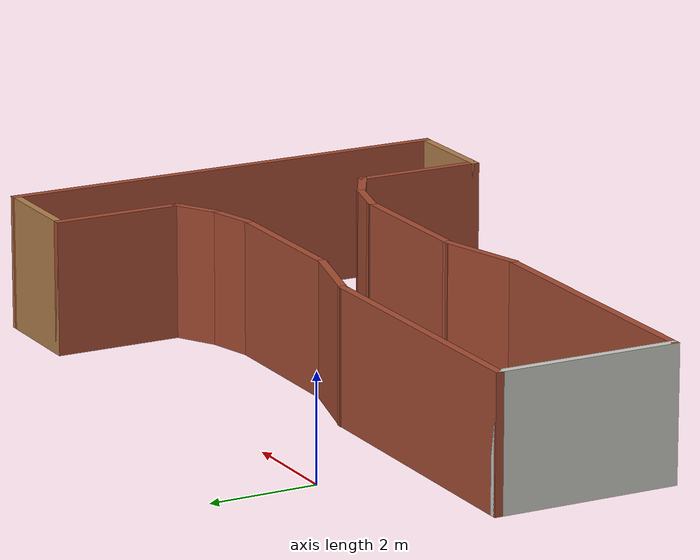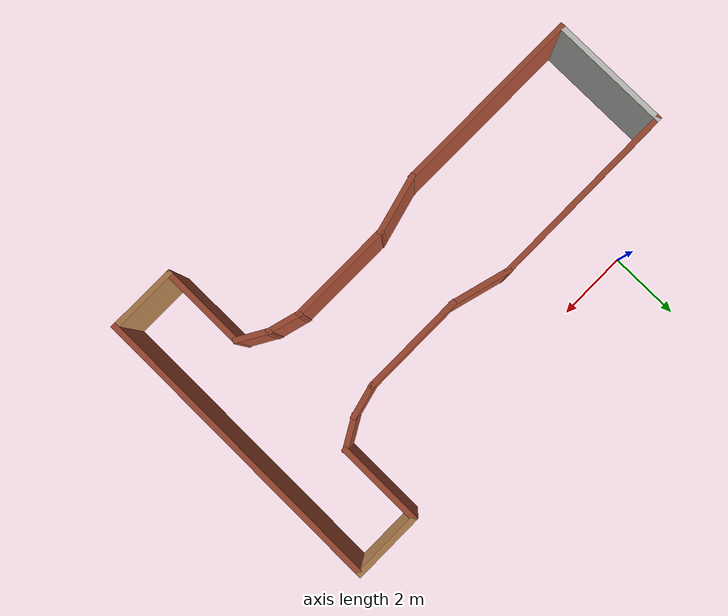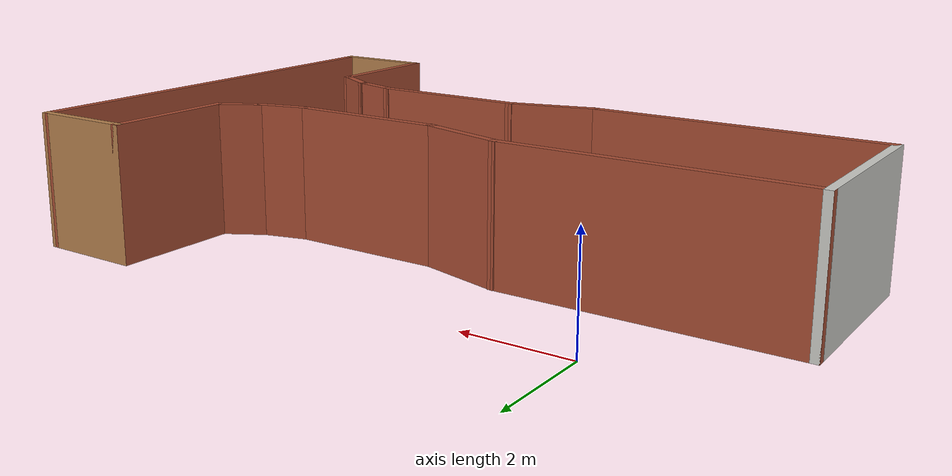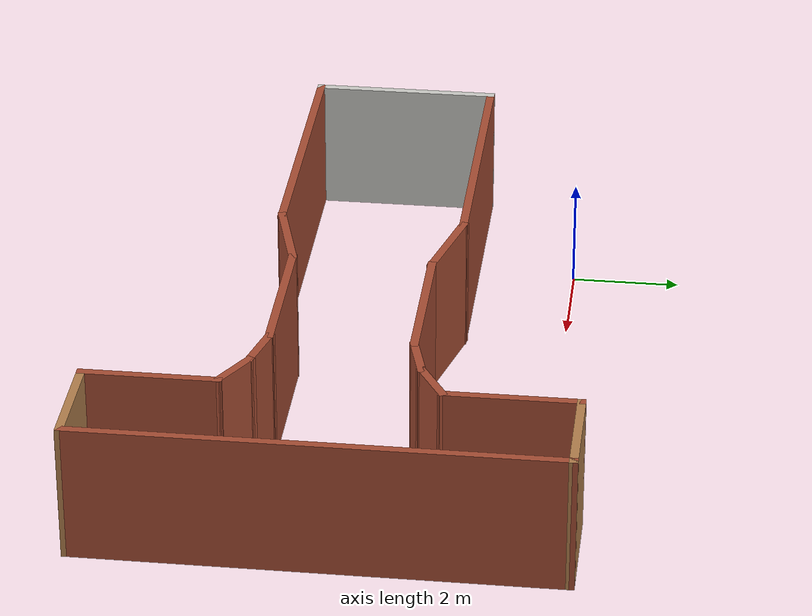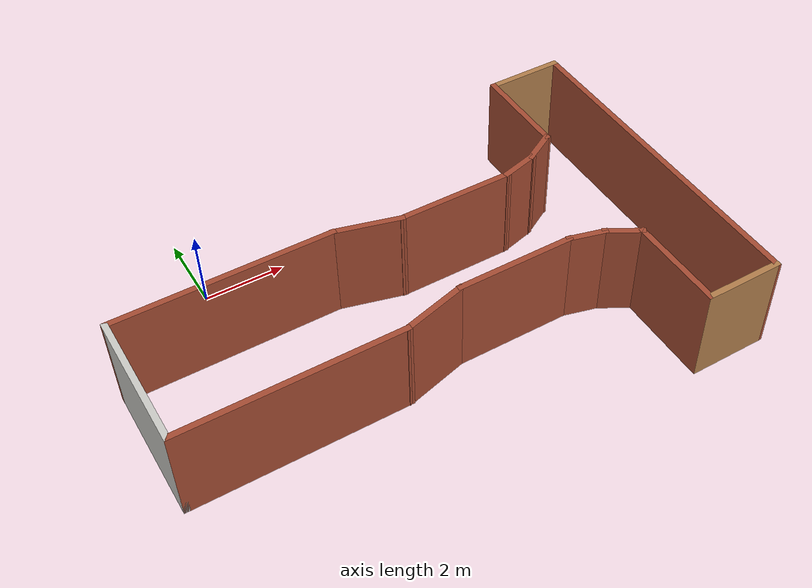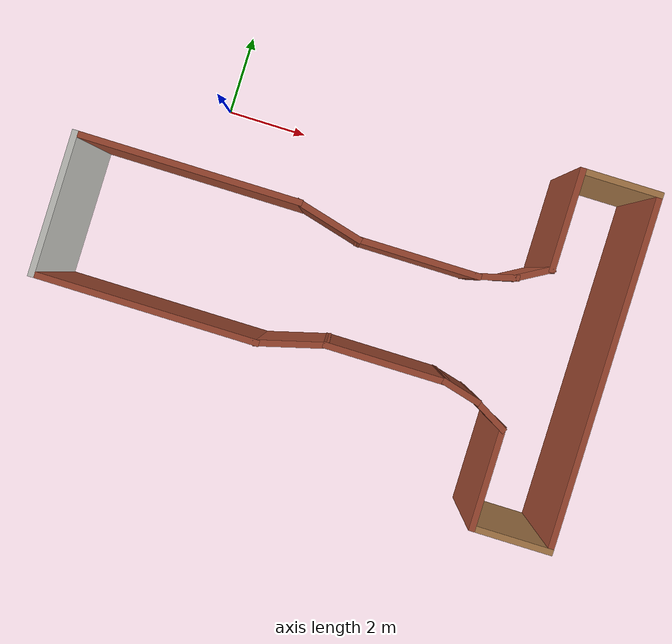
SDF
<?xml version='1.0'?>
<sdf version='1.5'>
  <model name='maze_3'>
    <pose frame=''>3.84212 -3.565 0 0 -0 0</pose>
    <link name='Wall_0'>
      <collision name='Wall_0_Collision'>
        <geometry>
          <box>
            <size>3.5 0.15 2.5</size>
          </box>
        </geometry>
        <pose frame=''>0 0 1.25 0 -0 0</pose>
      </collision>
      <visual name='Wall_0_Visual'>
        <pose frame=''>0 0 1.25 0 -0 0</pose>
        <geometry>
          <box>
            <size>3.5 0.15 2.5</size>
          </box>
        </geometry>
        <material>
          <script>
            <uri>file://media/materials/scripts/gazebo.material</uri>
            <name>Gazebo/CeilingTiled</name>
          </script>
          <ambient>1 1 1 1</ambient>
        </material>
      </visual>
      <pose frame=''>-6.58212 0 0 0 0 -1.5708</pose>
    </link>
    <link name='Wall_1'>
      <collision name='Wall_1_Collision'>
        <geometry>
          <box>
            <size>5.5 0.15 2.5</size>
          </box>
        </geometry>
        <pose frame=''>0 0 1.25 0 -0 0</pose>
      </collision>
      <visual name='Wall_1_Visual'>
        <pose frame=''>0 0 1.25 0 -0 0</pose>
        <geometry>
          <box>
            <size>5.5 0.15 2.5</size>
          </box>
        </geometry>
        <material>
          <script>
            <uri>file://media/materials/scripts/gazebo.material</uri>
            <name>Gazebo/Bricks</name>
          </script>
          <ambient>1 1 1 1</ambient>
        </material>
      </visual>
      <pose frame=''>-3.90712 -1.675 0 0 -0 0</pose>
    </link>
    <link name='Wall_11'>
      <collision name='Wall_11_Collision'>
        <geometry>
          <box>
            <size>1 0.15 2.5</size>
          </box>
        </geometry>
        <pose frame=''>0 0 1.25 0 -0 0</pose>
      </collision>
      <visual name='Wall_11_Visual'>
        <pose frame=''>0 0 1.25 0 -0 0</pose>
        <geometry>
          <box>
            <size>1 0.15 2.5</size>
          </box>
        </geometry>
        <material>
          <script>
            <uri>file://media/materials/scripts/gazebo.material</uri>
            <name>Gazebo/Bricks</name>
          </script>
          <ambient>1 1 1 1</ambient>
        </material>
      </visual>
      <pose frame=''>3.57388 -1.37089 0 0 0 -0.261799</pose>
    </link>
    <link name='Wall_12'>
      <collision name='Wall_12_Collision'>
        <geometry>
          <box>
            <size>1 0.15 2.5</size>
          </box>
        </geometry>
        <pose frame=''>0 0 1.25 0 -0 0</pose>
      </collision>
      <visual name='Wall_12_Visual'>
        <pose frame=''>0 0 1.25 0 -0 0</pose>
        <geometry>
          <box>
            <size>1 0.15 2.5</size>
          </box>
        </geometry>
        <material>
          <script>
            <uri>file://media/materials/scripts/gazebo.material</uri>
            <name>Gazebo/Bricks</name>
          </script>
          <ambient>1 1 1 1</ambient>
        </material>
      </visual>
      <pose frame=''>4.35246 -1.69339 0 0 0 -0.523599</pose>
    </link>
    <link name='Wall_13'>
      <collision name='Wall_13_Collision'>
        <geometry>
          <box>
            <size>2.5 0.15 2.5</size>
          </box>
        </geometry>
        <pose frame=''>0 0 1.25 0 -0 0</pose>
      </collision>
      <visual name='Wall_13_Visual'>
        <pose frame=''>0 0 1.25 0 -0 0</pose>
        <geometry>
          <box>
            <size>2.5 0.15 2.5</size>
          </box>
        </geometry>
        <material>
          <script>
            <uri>file://media/materials/scripts/gazebo.material</uri>
            <name>Gazebo/Bricks</name>
          </script>
          <ambient>1 1 1 1</ambient>
        </material>
      </visual>
      <pose frame=''>4.72052 -3.08089 0 0 0 -1.5708</pose>
    </link>
    <link name='Wall_14'>
      <collision name='Wall_14_Collision'>
        <geometry>
          <box>
            <size>2 0.15 2.5</size>
          </box>
        </geometry>
        <pose frame=''>0 0 1.25 0 -0 0</pose>
      </collision>
      <visual name='Wall_14_Visual'>
        <pose frame=''>0 0 1.25 0 -0 0</pose>
        <geometry>
          <box>
            <size>2 0.15 2.5</size>
          </box>
        </geometry>
        <material>
          <script>
            <uri>file://media/materials/scripts/gazebo.material</uri>
            <name>Gazebo/Wood</name>
          </script>
          <ambient>1 1 1 1</ambient>
        </material>
      </visual>
      <pose frame=''>5.64552 -4.25589 0 0 -0 0</pose>
    </link>
    <link name='Wall_17'>
      <collision name='Wall_17_Collision'>
        <geometry>
          <box>
            <size>1.02224 0.15 2.5</size>
          </box>
        </geometry>
        <pose frame=''>0 0 1.25 0 -0 0</pose>
      </collision>
      <visual name='Wall_17_Visual'>
        <pose frame=''>0 0 1.25 0 -0 0</pose>
        <geometry>
          <box>
            <size>1.02224 0.15 2.5</size>
          </box>
        </geometry>
        <material>
          <script>
            <uri>file://media/materials/scripts/gazebo.material</uri>
            <name>Gazebo/Bricks</name>
          </script>
          <ambient>1 1 1 1</ambient>
        </material>
      </visual>
      <pose frame=''>3.58538 1.37089 0 0 -0 0.254975</pose>
    </link>
    <link name='Wall_18'>
      <collision name='Wall_18_Collision'>
        <geometry>
          <box>
            <size>1 0.15 2.5</size>
          </box>
        </geometry>
        <pose frame=''>0 0 1.25 0 -0 0</pose>
      </collision>
      <visual name='Wall_18_Visual'>
        <pose frame=''>0 0 1.25 0 -0 0</pose>
        <geometry>
          <box>
            <size>1 0.15 2.5</size>
          </box>
        </geometry>
        <material>
          <script>
            <uri>file://media/materials/scripts/gazebo.material</uri>
            <name>Gazebo/Bricks</name>
          </script>
          <ambient>1 1 1 1</ambient>
        </material>
      </visual>
      <pose frame=''>4.36396 1.69339 0 0 -0 0.523599</pose>
    </link>
    <link name='Wall_19'>
      <collision name='Wall_19_Collision'>
        <geometry>
          <box>
            <size>2.5 0.15 2.5</size>
          </box>
        </geometry>
        <pose frame=''>0 0 1.25 0 -0 0</pose>
      </collision>
      <visual name='Wall_19_Visual'>
        <pose frame=''>0 0 1.25 0 -0 0</pose>
        <geometry>
          <box>
            <size>2.5 0.15 2.5</size>
          </box>
        </geometry>
        <material>
          <script>
            <uri>file://media/materials/scripts/gazebo.material</uri>
            <name>Gazebo/Bricks</name>
          </script>
          <ambient>1 1 1 1</ambient>
        </material>
      </visual>
      <pose frame=''>4.73202 3.08089 0 0 -0 1.5708</pose>
    </link>
    <link name='Wall_2'>
      <collision name='Wall_2_Collision'>
        <geometry>
          <box>
            <size>1.75 0.15 2.5</size>
          </box>
        </geometry>
        <pose frame=''>0 0 1.25 0 -0 0</pose>
      </collision>
      <visual name='Wall_2_Visual'>
        <pose frame=''>0 0 1.25 0 -0 0</pose>
        <geometry>
          <box>
            <size>1.75 0.15 2.5</size>
          </box>
        </geometry>
        <material>
          <script>
            <uri>file://media/materials/scripts/gazebo.material</uri>
            <name>Gazebo/Bricks</name>
          </script>
          <ambient>1 1 1 1</ambient>
        </material>
      </visual>
      <pose frame=''>-0.45938 -1.46795 0 0 -0 0.261799</pose>
    </link>
    <link name='Wall_20'>
      <collision name='Wall_20_Collision'>
        <geometry>
          <box>
            <size>2 0.15 2.5</size>
          </box>
        </geometry>
        <pose frame=''>0 0 1.25 0 -0 0</pose>
      </collision>
      <visual name='Wall_20_Visual'>
        <pose frame=''>0 0 1.25 0 -0 0</pose>
        <geometry>
          <box>
            <size>2 0.15 2.5</size>
          </box>
        </geometry>
        <material>
          <script>
            <uri>file://media/materials/scripts/gazebo.material</uri>
            <name>Gazebo/Wood</name>
          </script>
          <ambient>1 1 1 1</ambient>
        </material>
      </visual>
      <pose frame=''>5.65702 4.25589 0 0 -0 0</pose>
    </link>
    <link name='Wall_29'>
      <collision name='Wall_29_Collision'>
        <geometry>
          <box>
            <size>8.66178 0.15 2.5</size>
          </box>
        </geometry>
        <pose frame=''>0 0 1.25 0 -0 0</pose>
      </collision>
      <visual name='Wall_29_Visual'>
        <pose frame=''>0 0 1.25 0 -0 0</pose>
        <geometry>
          <box>
            <size>8.66178 0.15 2.5</size>
          </box>
        </geometry>
        <material>
          <script>
            <uri>file://media/materials/scripts/gazebo.material</uri>
            <name>Gazebo/Bricks</name>
          </script>
          <ambient>1 1 1 1</ambient>
        </material>
      </visual>
      <pose frame=''>6.57627 0 0 0 -0 1.56944</pose>
    </link>
    <link name='Wall_4'>
      <collision name='Wall_4_Collision'>
        <geometry>
          <box>
            <size>5.5 0.15 2.5</size>
          </box>
        </geometry>
        <pose frame=''>0 0 1.25 0 -0 0</pose>
      </collision>
      <visual name='Wall_4_Visual'>
        <pose frame=''>0 0 1.25 0 -0 0</pose>
        <geometry>
          <box>
            <size>5.5 0.15 2.5</size>
          </box>
        </geometry>
        <material>
          <script>
            <uri>file://media/materials/scripts/gazebo.material</uri>
            <name>Gazebo/Bricks</name>
          </script>
          <ambient>1 1 1 1</ambient>
        </material>
      </visual>
      <pose frame=''>-3.90712 1.675 0 0 -0 0</pose>
    </link>
    <link name='Wall_5'>
      <collision name='Wall_5_Collision'>
        <geometry>
          <box>
            <size>1.75 0.15 2.5</size>
          </box>
        </geometry>
        <pose frame=''>0 0 1.25 0 -0 0</pose>
      </collision>
      <visual name='Wall_5_Visual'>
        <pose frame=''>0 0 1.25 0 -0 0</pose>
        <geometry>
          <box>
            <size>1.75 0.15 2.5</size>
          </box>
        </geometry>
        <material>
          <script>
            <uri>file://media/materials/scripts/gazebo.material</uri>
            <name>Gazebo/Bricks</name>
          </script>
          <ambient>1 1 1 1</ambient>
        </material>
      </visual>
      <pose frame=''>-0.45938 1.46795 0 0 0 -0.261799</pose>
    </link>
    <link name='Wall_6'>
      <collision name='Wall_6_Collision'>
        <geometry>
          <box>
            <size>3 0.15 2.5</size>
          </box>
        </geometry>
        <pose frame=''>0 0 1.25 0 -0 0</pose>
      </collision>
      <visual name='Wall_6_Visual'>
        <pose frame=''>0 0 1.25 0 -0 0</pose>
        <geometry>
          <box>
            <size>3 0.15 2.5</size>
          </box>
        </geometry>
        <material>
          <script>
            <uri>file://media/materials/scripts/gazebo.material</uri>
            <name>Gazebo/Bricks</name>
          </script>
          <ambient>1 1 1 1</ambient>
        </material>
      </visual>
      <pose frame=''>1.73836 1.26089 0 0 -0 0</pose>
    </link>
    <link name='Wall_8'>
      <collision name='Wall_8_Collision'>
        <geometry>
          <box>
            <size>3 0.15 2.5</size>
          </box>
        </geometry>
        <pose frame=''>0 0 1.25 0 -0 0</pose>
      </collision>
      <visual name='Wall_8_Visual'>
        <pose frame=''>0 0 1.25 0 -0 0</pose>
        <geometry>
          <box>
            <size>3 0.15 2.5</size>
          </box>
        </geometry>
        <material>
          <script>
            <uri>file://media/materials/scripts/gazebo.material</uri>
            <name>Gazebo/Bricks</name>
          </script>
          <ambient>1 1 1 1</ambient>
        </material>
      </visual>
      <pose frame=''>1.73836 -1.26089 0 0 -0 0</pose>
    </link>
    <static>1</static>
  </model>
</sdf>
